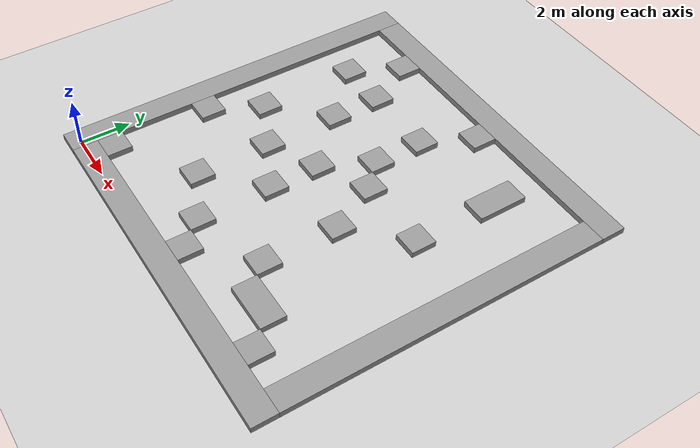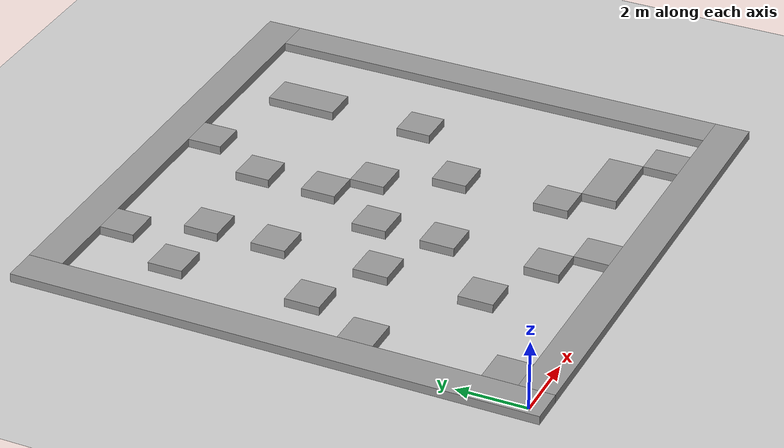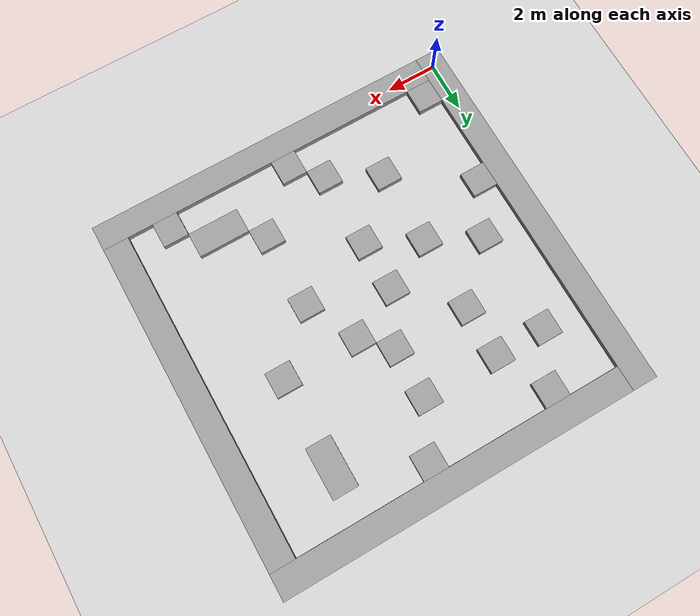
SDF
<sdf version="1.4">
  <world name="default">

    <scene>
      <ambient>0.4 0.4 0.4 1</ambient>
      <background>0.7 0.7 0.7 1</background>
      <shadows>true</shadows>
    </scene>

    <!-- A global light source -->
    <include>
      <uri>model://sun</uri>
    </include>

    <!-- A ground plane -->
    <include>
      <uri>model://ground_plane</uri>
    </include>

	<!-- Maze -->
    <include>
      <uri>model://random_obstacles</uri>
    </include>

    <physics type="ode">
      <real_time_update_rate>1000.0</real_time_update_rate>
      <max_step_size>0.001</max_step_size>
      <real_time_factor>1</real_time_factor>
      <ode>
        <solver>
          <type>quick</type>
          <iters>150</iters>
          <precon_iters>0</precon_iters>
          <sor>1.400000</sor>
          <use_dynamic_moi_rescaling>1</use_dynamic_moi_rescaling>
        </solver>
        <constraints>
          <cfm>0.00001</cfm>
          <erp>0.2</erp>
          <contact_max_correcting_vel>2000.000000</contact_max_correcting_vel>
          <contact_surface_layer>0.01000</contact_surface_layer>
        </constraints>
      </ode>
    </physics>
  </world>

</sdf>

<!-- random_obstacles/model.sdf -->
<sdf version='1.7'>
  <model name='random_obstacles'>
    <pose>7 7 0 0 -0 0</pose>
    <link name='Wall_100'>
      <collision name='Wall_100_Collision'>
        <geometry>
          <box>
            <size>1 1 0.25</size>
          </box>
        </geometry>
        <pose>0 0 0.125 0 -0 0</pose>
      </collision>
      <visual name='Wall_100_Visual'>
        <pose>0 0 0.125 0 -0 0</pose>
        <geometry>
          <box>
            <size>1 1 0.25</size>
          </box>
        </geometry>
        <material>
          <script>
            <uri>file://media/materials/scripts/gazebo.material</uri>
            <name>Gazebo/Grey</name>
          </script>
          <ambient>1 1 1 1</ambient>
        </material>
        <meta>
          <layer>0</layer>
        </meta>
      </visual>
      <pose>-4 6 0 0 -0 0</pose>
    </link>
    <link name='Wall_102'>
      <collision name='Wall_102_Collision'>
        <geometry>
          <box>
            <size>1 1 0.25</size>
          </box>
        </geometry>
        <pose>0 0 0.125 0 -0 0</pose>
      </collision>
      <visual name='Wall_102_Visual'>
        <pose>0 0 0.125 0 -0 0</pose>
        <geometry>
          <box>
            <size>1 1 0.25</size>
          </box>
        </geometry>
        <material>
          <script>
            <uri>file://media/materials/scripts/gazebo.material</uri>
            <name>Gazebo/Grey</name>
          </script>
          <ambient>1 1 1 1</ambient>
        </material>
        <meta>
          <layer>0</layer>
        </meta>
      </visual>
      <pose>-3 -4 0 0 -0 0</pose>
    </link>
    <link name='Wall_104'>
      <collision name='Wall_104_Collision'>
        <geometry>
          <box>
            <size>1 1 0.25</size>
          </box>
        </geometry>
        <pose>0 0 0.125 0 -0 0</pose>
      </collision>
      <visual name='Wall_104_Visual'>
        <pose>0 0 0.125 0 -0 0</pose>
        <geometry>
          <box>
            <size>1 1 0.25</size>
          </box>
        </geometry>
        <material>
          <script>
            <uri>file://media/materials/scripts/gazebo.material</uri>
            <name>Gazebo/Grey</name>
          </script>
          <ambient>1 1 1 1</ambient>
        </material>
        <meta>
          <layer>0</layer>
        </meta>
      </visual>
      <pose>5 -6 0 0 -0 0</pose>
    </link>
    <link name='Wall_106'>
      <collision name='Wall_106_Collision'>
        <geometry>
          <box>
            <size>1 1 0.25</size>
          </box>
        </geometry>
        <pose>0 0 0.125 0 -0 0</pose>
      </collision>
      <visual name='Wall_106_Visual'>
        <pose>0 0 0.125 0 -0 0</pose>
        <geometry>
          <box>
            <size>1 1 0.25</size>
          </box>
        </geometry>
        <material>
          <script>
            <uri>file://media/materials/scripts/gazebo.material</uri>
            <name>Gazebo/Grey</name>
          </script>
          <ambient>1 1 1 1</ambient>
        </material>
        <meta>
          <layer>0</layer>
        </meta>
      </visual>
      <pose>-1 0 0 0 -0 0</pose>
    </link>
    <link name='Wall_108'>
      <collision name='Wall_108_Collision'>
        <geometry>
          <box>
            <size>1 1 0.25</size>
          </box>
        </geometry>
        <pose>0 0 0.125 0 -0 0</pose>
      </collision>
      <visual name='Wall_108_Visual'>
        <pose>0 0 0.125 0 -0 0</pose>
        <geometry>
          <box>
            <size>1 1 0.25</size>
          </box>
        </geometry>
        <material>
          <script>
            <uri>file://media/materials/scripts/gazebo.material</uri>
            <name>Gazebo/Grey</name>
          </script>
          <ambient>1 1 1 1</ambient>
        </material>
        <meta>
          <layer>0</layer>
        </meta>
      </visual>
      <pose>0 -6 0 0 -0 0</pose>
    </link>
    <link name='Wall_110'>
      <collision name='Wall_110_Collision'>
        <geometry>
          <box>
            <size>1 1 0.25</size>
          </box>
        </geometry>
        <pose>0 0 0.125 0 -0 0</pose>
      </collision>
      <visual name='Wall_110_Visual'>
        <pose>0 0 0.125 0 -0 0</pose>
        <geometry>
          <box>
            <size>1 1 0.25</size>
          </box>
        </geometry>
        <material>
          <script>
            <uri>file://media/materials/scripts/gazebo.material</uri>
            <name>Gazebo/Grey</name>
          </script>
          <ambient>1 1 1 1</ambient>
        </material>
        <meta>
          <layer>0</layer>
        </meta>
      </visual>
      <pose>-1 -2 0 0 -0 0</pose>
    </link>
    <link name='Wall_112'>
      <collision name='Wall_112_Collision'>
        <geometry>
          <box>
            <size>1 1 0.25</size>
          </box>
        </geometry>
        <pose>0 0 0.125 0 -0 0</pose>
      </collision>
      <visual name='Wall_112_Visual'>
        <pose>0 0 0.125 0 -0 0</pose>
        <geometry>
          <box>
            <size>1 1 0.25</size>
          </box>
        </geometry>
        <material>
          <script>
            <uri>file://media/materials/scripts/gazebo.material</uri>
            <name>Gazebo/Grey</name>
          </script>
          <ambient>1 1 1 1</ambient>
        </material>
        <meta>
          <layer>0</layer>
        </meta>
      </visual>
      <pose>0 4 0 0 -0 0</pose>
    </link>
    <link name='Wall_54'>
      <collision name='Wall_54_Collision'>
        <geometry>
          <box>
            <size>14 1 0.25</size>
          </box>
        </geometry>
        <pose>0 0 0.125 0 -0 0</pose>
      </collision>
      <visual name='Wall_54_Visual'>
        <pose>0 0 0.125 0 -0 0</pose>
        <geometry>
          <box>
            <size>14 1 0.25</size>
          </box>
        </geometry>
        <material>
          <script>
            <uri>file://media/materials/scripts/gazebo.material</uri>
            <name>Gazebo/Grey</name>
          </script>
          <ambient>1 1 1 1</ambient>
        </material>
        <meta>
          <layer>0</layer>
        </meta>
      </visual>
      <pose>0.5 7 0 0 -0 0</pose>
    </link>
    <link name='Wall_56'>
      <collision name='Wall_56_Collision'>
        <geometry>
          <box>
            <size>1 1 0.25</size>
          </box>
        </geometry>
        <pose>0 0 0.125 0 -0 0</pose>
      </collision>
      <visual name='Wall_56_Visual'>
        <pose>0 0 0.125 0 -0 0</pose>
        <geometry>
          <box>
            <size>1 1 0.25</size>
          </box>
        </geometry>
        <material>
          <script>
            <uri>file://media/materials/scripts/gazebo.material</uri>
            <name>Gazebo/Grey</name>
          </script>
          <ambient>1 1 1 1</ambient>
        </material>
        <meta>
          <layer>0</layer>
        </meta>
      </visual>
      <pose>-6 -6 0 0 -0 0</pose>
    </link>
    <link name='Wall_58'>
      <collision name='Wall_58_Collision'>
        <geometry>
          <box>
            <size>1 1 0.25</size>
          </box>
        </geometry>
        <pose>0 0 0.125 0 -0 0</pose>
      </collision>
      <visual name='Wall_58_Visual'>
        <pose>0 0 0.125 0 -0 0</pose>
        <geometry>
          <box>
            <size>1 1 0.25</size>
          </box>
        </geometry>
        <material>
          <script>
            <uri>file://media/materials/scripts/gazebo.material</uri>
            <name>Gazebo/Grey</name>
          </script>
          <ambient>1 1 1 1</ambient>
        </material>
        <meta>
          <layer>0</layer>
        </meta>
      </visual>
      <pose>-3 -1 0 0 -0 0</pose>
    </link>
    <link name='Wall_60'>
      <collision name='Wall_60_Collision'>
        <geometry>
          <box>
            <size>1 1 0.25</size>
          </box>
        </geometry>
        <pose>0 0 0.125 0 -0 0</pose>
      </collision>
      <visual name='Wall_60_Visual'>
        <pose>0 0 0.125 0 -0 0</pose>
        <geometry>
          <box>
            <size>1 1 0.25</size>
          </box>
        </geometry>
        <material>
          <script>
            <uri>file://media/materials/scripts/gazebo.material</uri>
            <name>Gazebo/Grey</name>
          </script>
          <ambient>1 1 1 1</ambient>
        </material>
        <meta>
          <layer>0</layer>
        </meta>
      </visual>
      <pose>-1 -5 0 0 -0 0</pose>
    </link>
    <link name='Wall_62'>
      <collision name='Wall_62_Collision'>
        <geometry>
          <box>
            <size>1 1 0.25</size>
          </box>
        </geometry>
        <pose>0 0 0.125 0 -0 0</pose>
      </collision>
      <visual name='Wall_62_Visual'>
        <pose>0 0 0.125 0 -0 0</pose>
        <geometry>
          <box>
            <size>1 1 0.25</size>
          </box>
        </geometry>
        <material>
          <script>
            <uri>file://media/materials/scripts/gazebo.material</uri>
            <name>Gazebo/Grey</name>
          </script>
          <ambient>1 1 1 1</ambient>
        </material>
        <meta>
          <layer>0</layer>
        </meta>
      </visual>
      <pose>1 1 0 0 -0 0</pose>
    </link>
    <link name='Wall_64'>
      <collision name='Wall_64_Collision'>
        <geometry>
          <box>
            <size>1 1 0.25</size>
          </box>
        </geometry>
        <pose>0 0 0.125 0 -0 0</pose>
      </collision>
      <visual name='Wall_64_Visual'>
        <pose>0 0 0.125 0 -0 0</pose>
        <geometry>
          <box>
            <size>1 1 0.25</size>
          </box>
        </geometry>
        <material>
          <script>
            <uri>file://media/materials/scripts/gazebo.material</uri>
            <name>Gazebo/Grey</name>
          </script>
          <ambient>1 1 1 1</ambient>
        </material>
        <meta>
          <layer>0</layer>
        </meta>
      </visual>
      <pose>-3 4 0 0 -0 0</pose>
    </link>
    <link name='Wall_66'>
      <collision name='Wall_66_Collision'>
        <geometry>
          <box>
            <size>13 1 0.25</size>
          </box>
        </geometry>
        <pose>0 0 0.125 0 -0 0</pose>
      </collision>
      <visual name='Wall_66_Visual'>
        <pose>0 0 0.125 0 -0 0</pose>
        <geometry>
          <box>
            <size>13 1 0.25</size>
          </box>
        </geometry>
        <material>
          <script>
            <uri>file://media/materials/scripts/gazebo.material</uri>
            <name>Gazebo/Grey</name>
          </script>
          <ambient>1 1 1 1</ambient>
        </material>
        <meta>
          <layer>0</layer>
        </meta>
      </visual>
      <pose>7 0 0 0 -0 -1.5708</pose>
    </link>
    <link name='Wall_68'>
      <collision name='Wall_68_Collision'>
        <geometry>
          <box>
            <size>1 1 0.25</size>
          </box>
        </geometry>
        <pose>0 0 0.125 0 -0 0</pose>
      </collision>
      <visual name='Wall_68_Visual'>
        <pose>0 0 0.125 0 -0 0</pose>
        <geometry>
          <box>
            <size>1 1 0.25</size>
          </box>
        </geometry>
        <material>
          <script>
            <uri>file://media/materials/scripts/gazebo.material</uri>
            <name>Gazebo/Grey</name>
          </script>
          <ambient>1 1 1 1</ambient>
        </material>
        <meta>
          <layer>0</layer>
        </meta>
      </visual>
      <pose>-6 -2 0 0 -0 0</pose>
    </link>
    <link name='Wall_70'>
      <collision name='Wall_70_Collision'>
        <geometry>
          <box>
            <size>15 1 0.25</size>
          </box>
        </geometry>
        <pose>0 0 0.125 0 -0 0</pose>
      </collision>
      <visual name='Wall_70_Visual'>
        <pose>0 0 0.125 0 -0 0</pose>
        <geometry>
          <box>
            <size>15 1 0.25</size>
          </box>
        </geometry>
        <material>
          <script>
            <uri>file://media/materials/scripts/gazebo.material</uri>
            <name>Gazebo/Grey</name>
          </script>
          <ambient>1 1 1 1</ambient>
        </material>
        <meta>
          <layer>0</layer>
        </meta>
      </visual>
      <pose>-7 0 0 0 -0 1.5708</pose>
    </link>
    <link name='Wall_72'>
      <collision name='Wall_72_Collision'>
        <geometry>
          <box>
            <size>14 1 0.25</size>
          </box>
        </geometry>
        <pose>0 0 0.125 0 -0 0</pose>
      </collision>
      <visual name='Wall_72_Visual'>
        <pose>0 0 0.125 0 -0 0</pose>
        <geometry>
          <box>
            <size>14 1 0.25</size>
          </box>
        </geometry>
        <material>
          <script>
            <uri>file://media/materials/scripts/gazebo.material</uri>
            <name>Gazebo/Grey</name>
          </script>
          <ambient>1 1 1 1</ambient>
        </material>
        <meta>
          <layer>0</layer>
        </meta>
      </visual>
      <pose>0.5 -7 0 0 -0 0</pose>
    </link>
    <link name='Wall_74'>
      <collision name='Wall_74_Collision'>
        <geometry>
          <box>
            <size>1 1 0.25</size>
          </box>
        </geometry>
        <pose>0 0 0.125 0 -0 0</pose>
      </collision>
      <visual name='Wall_74_Visual'>
        <pose>0 0 0.125 0 -0 0</pose>
        <geometry>
          <box>
            <size>1 1 0.25</size>
          </box>
        </geometry>
        <material>
          <script>
            <uri>file://media/materials/scripts/gazebo.material</uri>
            <name>Gazebo/Grey</name>
          </script>
          <ambient>1 1 1 1</ambient>
        </material>
        <meta>
          <layer>0</layer>
        </meta>
      </visual>
      <pose>2 -1 0 0 -0 0</pose>
    </link>
    <link name='Wall_76'>
      <collision name='Wall_76_Collision'>
        <geometry>
          <box>
            <size>1 1 0.25</size>
          </box>
        </geometry>
        <pose>0 0 0.125 0 -0 0</pose>
      </collision>
      <visual name='Wall_76_Visual'>
        <pose>0 0 0.125 0 -0 0</pose>
        <geometry>
          <box>
            <size>1 1 0.25</size>
          </box>
        </geometry>
        <material>
          <script>
            <uri>file://media/materials/scripts/gazebo.material</uri>
            <name>Gazebo/Grey</name>
          </script>
          <ambient>1 1 1 1</ambient>
        </material>
        <meta>
          <layer>0</layer>
        </meta>
      </visual>
      <pose>1 6 0 0 -0 0</pose>
    </link>
    <link name='Wall_78'>
      <collision name='Wall_78_Collision'>
        <geometry>
          <box>
            <size>2 1 0.25</size>
          </box>
        </geometry>
        <pose>0 0 0.125 0 -0 0</pose>
      </collision>
      <visual name='Wall_78_Visual'>
        <pose>0 0 0.125 0 -0 0</pose>
        <geometry>
          <box>
            <size>2 1 0.25</size>
          </box>
        </geometry>
        <material>
          <script>
            <uri>file://media/materials/scripts/gazebo.material</uri>
            <name>Gazebo/Grey</name>
          </script>
          <ambient>1 1 1 1</ambient>
        </material>
        <meta>
          <layer>0</layer>
        </meta>
      </visual>
      <pose>4 4.5 0 0 -0 1.5708</pose>
    </link>
    <link name='Wall_80'>
      <collision name='Wall_80_Collision'>
        <geometry>
          <box>
            <size>1 1 0.25</size>
          </box>
        </geometry>
        <pose>0 0 0.125 0 -0 0</pose>
      </collision>
      <visual name='Wall_80_Visual'>
        <pose>0 0 0.125 0 -0 0</pose>
        <geometry>
          <box>
            <size>1 1 0.25</size>
          </box>
        </geometry>
        <material>
          <script>
            <uri>file://media/materials/scripts/gazebo.material</uri>
            <name>Gazebo/Grey</name>
          </script>
          <ambient>1 1 1 1</ambient>
        </material>
        <meta>
          <layer>0</layer>
        </meta>
      </visual>
      <pose>2 -4 0 0 -0 0</pose>
    </link>
    <link name='Wall_82'>
      <collision name='Wall_82_Collision'>
        <geometry>
          <box>
            <size>1 1 0.25</size>
          </box>
        </geometry>
        <pose>0 0 0.125 0 -0 0</pose>
      </collision>
      <visual name='Wall_82_Visual'>
        <pose>0 0 0.125 0 -0 0</pose>
        <geometry>
          <box>
            <size>1 1 0.25</size>
          </box>
        </geometry>
        <material>
          <script>
            <uri>file://media/materials/scripts/gazebo.material</uri>
            <name>Gazebo/Grey</name>
          </script>
          <ambient>1 1 1 1</ambient>
        </material>
        <meta>
          <layer>0</layer>
        </meta>
      </visual>
      <pose>-3 2 0 0 -0 0</pose>
    </link>
    <link name='Wall_84'>
      <collision name='Wall_84_Collision'>
        <geometry>
          <box>
            <size>1 1 0.25</size>
          </box>
        </geometry>
        <pose>0 0 0.125 0 -0 0</pose>
      </collision>
      <visual name='Wall_84_Visual'>
        <pose>0 0 0.125 0 -0 0</pose>
        <geometry>
          <box>
            <size>1 1 0.25</size>
          </box>
        </geometry>
        <material>
          <script>
            <uri>file://media/materials/scripts/gazebo.material</uri>
            <name>Gazebo/Grey</name>
          </script>
          <ambient>1 1 1 1</ambient>
        </material>
        <meta>
          <layer>0</layer>
        </meta>
      </visual>
      <pose>-5 4 0 0 -0 0</pose>
    </link>
    <link name='Wall_86'>
      <collision name='Wall_86_Collision'>
        <geometry>
          <box>
            <size>1 1 0.25</size>
          </box>
        </geometry>
        <pose>0 0 0.125 0 -0 0</pose>
      </collision>
      <visual name='Wall_86_Visual'>
        <pose>0 0 0.125 0 -0 0</pose>
        <geometry>
          <box>
            <size>1 1 0.25</size>
          </box>
        </geometry>
        <material>
          <script>
            <uri>file://media/materials/scripts/gazebo.material</uri>
            <name>Gazebo/Grey</name>
          </script>
          <ambient>1 1 1 1</ambient>
        </material>
        <meta>
          <layer>0</layer>
        </meta>
      </visual>
      <pose>-5 0 0 0 -0 0</pose>
    </link>
    <link name='Wall_90'>
      <collision name='Wall_90_Collision'>
        <geometry>
          <box>
            <size>1 1 0.25</size>
          </box>
        </geometry>
        <pose>0 0 0.125 0 -0 0</pose>
      </collision>
      <visual name='Wall_90_Visual'>
        <pose>0 0 0.125 0 -0 0</pose>
        <geometry>
          <box>
            <size>1 1 0.25</size>
          </box>
        </geometry>
        <material>
          <script>
            <uri>file://media/materials/scripts/gazebo.material</uri>
            <name>Gazebo/Grey</name>
          </script>
          <ambient>1 1 1 1</ambient>
        </material>
        <meta>
          <layer>0</layer>
        </meta>
      </visual>
      <pose>0 2 0 0 -0 0</pose>
    </link>
    <link name='Wall_96'>
      <collision name='Wall_96_Collision'>
        <geometry>
          <box>
            <size>2 1 0.25</size>
          </box>
        </geometry>
        <pose>0 0 0.125 0 -0 0</pose>
      </collision>
      <visual name='Wall_96_Visual'>
        <pose>0 0 0.125 0 -0 0</pose>
        <geometry>
          <box>
            <size>2 1 0.25</size>
          </box>
        </geometry>
        <material>
          <script>
            <uri>file://media/materials/scripts/gazebo.material</uri>
            <name>Gazebo/Grey</name>
          </script>
          <ambient>1 1 1 1</ambient>
        </material>
        <meta>
          <layer>0</layer>
        </meta>
      </visual>
      <pose>3.5 -5 0 0 -0 0</pose>
    </link>
    <link name='Wall_98'>
      <collision name='Wall_98_Collision'>
        <geometry>
          <box>
            <size>1 1 0.25</size>
          </box>
        </geometry>
        <pose>0 0 0.125 0 -0 0</pose>
      </collision>
      <visual name='Wall_98_Visual'>
        <pose>0 0 0.125 0 -0 0</pose>
        <geometry>
          <box>
            <size>1 1 0.25</size>
          </box>
        </geometry>
        <material>
          <script>
            <uri>file://media/materials/scripts/gazebo.material</uri>
            <name>Gazebo/Grey</name>
          </script>
          <ambient>1 1 1 1</ambient>
        </material>
        <meta>
          <layer>0</layer>
        </meta>
      </visual>
      <pose>4 1 0 0 -0 0</pose>
    </link>
    <static>1</static>
  </model>
</sdf>
